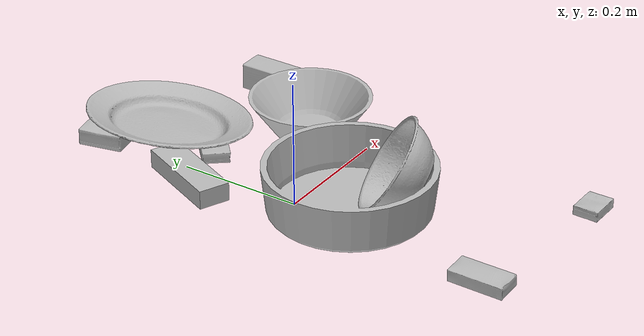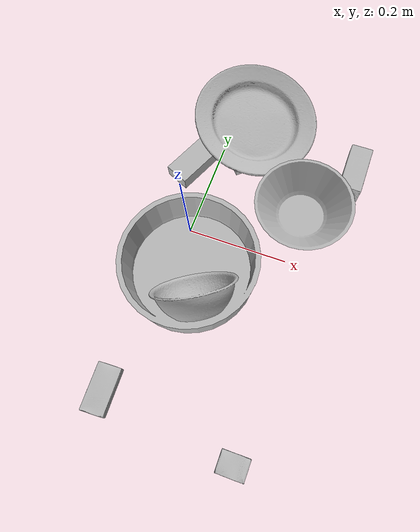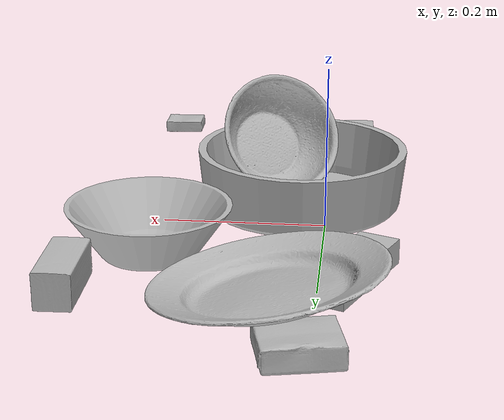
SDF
<sdf version="1.4">
  <world name="default">
    <light name="light1" type="point">
      <pose>0 0 1 0 0 0</pose>
      <diffuse>3 3 3 1</diffuse>
      <specular>3 3 3 1</specular>
    </light>
    <light name="light2" type="point">
      <pose>0 0.5 2 0 0 0</pose>
      <diffuse>1 1 1 1</diffuse>
      <specular>1 1 1 1</specular>
    </light>
    <light name="light3" type="point">
      <pose>0 0.5 2 0 0 0</pose>
      <diffuse>3 3 3 1</diffuse>
      <specular>3 3 3 1</specular>
    </light>
    <scene>
      <ambient>0.7 0.7 0.7</ambient>
    </scene>
    <model name="box1">
      <link name="link_box1">
        <collision name="default">
          <geometry>
            <mesh>
              <uri>model://jenga/collision_meshes/collision.obj</uri>
              <scale>1.0 1.0 1.0</scale>
            </mesh>
          </geometry>
          <surface>
            <friction>
              <ode>
                <mu>0.5</mu>
                <mu2>0.5</mu2>
              </ode>
            </friction>
          <contact>
        <ode>
            <max_vel>0</max_vel>
            <min_depth>0.0001</min_depth>
            <kp>1e8</kp>
        </ode>
    </contact></surface>
        </collision>
        <visual name="default">
          <geometry>
            <mesh>
              <uri>model://jenga/visual_meshes/visual.dae</uri>
              <scale>1.0 1.0 1.0</scale>
            </mesh>
          </geometry>
        </visual>
        <inertial>
          <mass>0.21843092143535614</mass>
          <pose>-2.502855807051674e-07 -0.00010250011109746993 -4.092339804628864e-05 0.0 -7.342154049184251e-07 0.0</pose>
          <inertia>
            <ixx>6.0445138e-05</ixx>
            <iyy>0.0004095746</iyy>
            <izz>0.00043725572</izz>
            <ixy>0</ixy>
            <ixz>0</ixz>
            <iyz>0</iyz>
          </inertia>
        </inertial>
      </link>
      <pose>-0.037145424634218216 0.16622358560562134 0.01500006951391697 -2.909081627653035e-06 1.246560093666286e-07 -1.9793682817948453</pose>
    </model>
    <model name="box11">
      <link name="link_box11">
        <collision name="default">
          <geometry>
            <mesh>
              <uri>model://pudding_box/collision_meshes/collision.obj</uri>
              <scale>0.5 0.5 0.5</scale>
            </mesh>
          </geometry>
          <surface>
            <friction>
              <ode>
                <mu>0.5</mu>
                <mu2>0.5</mu2>
              </ode>
            </friction>
          <contact>
        <ode>
            <max_vel>0</max_vel>
            <min_depth>0.0001</min_depth>
            <kp>1e8</kp>
        </ode>
    </contact></surface>
        </collision>
        <visual name="default">
          <geometry>
            <mesh>
              <uri>model://pudding_box/visual_meshes/visual.dae</uri>
              <scale>0.5 0.5 0.5</scale>
            </mesh>
          </geometry>
        </visual>
        <inertial>
          <mass>0.04130476340651512</mass>
          <pose>0.00024474109522998333 0.00040339428232982755 -0.0002594413817860186 0.005213101341234124 -0.006603795469139562 0.020079830758209564</pose>
          <inertia>
            <ixx>1.1673226e-05</ixx>
            <iyy>7.85383e-06</iyy>
            <izz>1.723857e-05</izz>
            <ixy>0</ixy>
            <ixz>0</ixz>
            <iyz>0</iyz>
          </inertia>
        </inertial>
      </link>
      <pose>0.05112246051430702 0.18457116186618805 0.009862851351499557 0.022418805809441587 -0.011360135169760133 2.3065350059812406</pose>
    </model>
    <model name="box2">
      <link name="link_box2">
        <collision name="default">
          <geometry>
            <mesh>
              <uri>model://gelatin_box/collision_meshes/collision.obj</uri>
              <scale>1.0 1.0 1.0</scale>
            </mesh>
          </geometry>
          <surface>
            <friction>
              <ode>
                <mu>0.5</mu>
                <mu2>0.5</mu2>
              </ode>
            </friction>
          <contact>
        <ode>
            <max_vel>0</max_vel>
            <min_depth>0.0001</min_depth>
            <kp>1e8</kp>
        </ode>
    </contact></surface>
        </collision>
        <visual name="default">
          <geometry>
            <mesh>
              <uri>model://gelatin_box/visual_meshes/visual.dae</uri>
              <scale>1.0 1.0 1.0</scale>
            </mesh>
          </geometry>
        </visual>
        <inertial>
          <mass>0.24153950810432434</mass>
          <pose>0.0004319618456065655 0.00011156871914863586 -0.0003640321083366871 -0.001050371984258798 -0.004755819621622892 0.016440559472145032</pose>
          <inertia>
            <ixx>0.00017050719</ixx>
            <iyy>0.00012179239</iyy>
            <izz>0.0002595499</izz>
            <ixy>0</ixy>
            <ixz>0</ixz>
            <iyz>0</iyz>
          </inertia>
        </inertial>
      </link>
      <pose>0.010921898297965527 0.35529088973999023 0.015168292447924614 0.005599006113062722 -0.007306503703211404 1.7794436261316502</pose>
    </model>
    <model name="box21">
      <link name="link_box21">
        <collision name="default">
          <geometry>
            <mesh>
              <uri>model://cracker_box/collision_meshes/collision.obj</uri>
              <scale>0.25 0.25 0.25</scale>
            </mesh>
          </geometry>
          <surface>
            <friction>
              <ode>
                <mu>0.5</mu>
                <mu2>0.5</mu2>
              </ode>
            </friction>
          <contact>
        <ode>
            <max_vel>0</max_vel>
            <min_depth>0.0001</min_depth>
            <kp>1e8</kp>
        </ode>
    </contact></surface>
        </collision>
        <visual name="default">
          <geometry>
            <mesh>
              <uri>model://cracker_box/visual_meshes/visual.dae</uri>
              <scale>0.25 0.25 0.25</scale>
            </mesh>
          </geometry>
        </visual>
        <inertial>
          <mass>0.04855586588382721</mass>
          <pose>0.00023660322767682374 6.358561222441494e-05 -0.00042573834070935845 -0.00031620783521113603 -0.01110649053142329 0.0025467954689779603</pose>
          <inertia>
            <ixx>7.719027e-06</ixx>
            <iyy>1.2745631e-05</iyy>
            <izz>1.8189185e-05</izz>
            <ixy>0</ixy>
            <ixz>0</ixz>
            <iyz>0</iyz>
          </inertia>
        </inertial>
      </link>
      <pose>0.22739937901496887 -0.3795267641544342 0.009120449423789978 -0.011787988882537542 -0.007367193378553132 -3.1414634992311194</pose>
    </model>
    <model name="box3">
      <link name="link_box3">
        <collision name="default">
          <geometry>
            <mesh>
              <uri>model://wood_block/collision_meshes/collision.obj</uri>
              <scale>0.5 0.5 0.5</scale>
            </mesh>
          </geometry>
          <surface>
            <friction>
              <ode>
                <mu>0.5</mu>
                <mu2>0.5</mu2>
              </ode>
            </friction>
          <contact>
        <ode>
            <max_vel>0</max_vel>
            <min_depth>0.0001</min_depth>
            <kp>1e8</kp>
        </ode>
    </contact></surface>
        </collision>
        <visual name="default">
          <geometry>
            <mesh>
              <uri>model://wood_block/visual_meshes/visual.dae</uri>
              <scale>0.5 0.5 0.5</scale>
            </mesh>
          </geometry>
        </visual>
        <inertial>
          <mass>0.17342756688594818</mass>
          <pose>-2.906657982748584e-06 -0.000285404734313488 0.00013204291462898254 -0.052208426481931185 -0.005192696107352816 -0.006861379630616638</pose>
          <inertia>
            <ixx>5.8018082e-05</ixx>
            <iyy>0.00018327912</iyy>
            <izz>0.00018259356</izz>
            <ixy>0</ixy>
            <ixz>0</ixz>
            <iyz>0</iyz>
          </inertia>
        </inertial>
      </link>
      <pose>0.27786925435066223 0.22642719745635986 0.022629253566265106 -0.005208556288602668 0.00571874518133005 -1.5685555644038864</pose>
    </model>
    <model name="box31">
      <link name="link_box31">
        <collision name="default">
          <geometry>
            <mesh>
              <uri>model://sugar_box/collision_meshes/collision.obj</uri>
              <scale>0.5 0.5 0.5</scale>
            </mesh>
          </geometry>
          <surface>
            <friction>
              <ode>
                <mu>0.5</mu>
                <mu2>0.5</mu2>
              </ode>
            </friction>
          <contact>
        <ode>
            <max_vel>0</max_vel>
            <min_depth>0.0001</min_depth>
            <kp>1e8</kp>
        </ode>
    </contact></surface>
        </collision>
        <visual name="default">
          <geometry>
            <mesh>
              <uri>model://sugar_box/visual_meshes/visual.dae</uri>
              <scale>0.5 0.5 0.5</scale>
            </mesh>
          </geometry>
        </visual>
        <inertial>
          <mass>0.102778859436512</mass>
          <pose>0.0005171863595023751 1.924554817378521e-05 -0.00018182402709499002 -0.00040462592244169 0.0010506634051582892 0.0026153783234817013</pose>
          <inertia>
            <ixx>2.1408765e-05</ixx>
            <iyy>6.919753e-05</iyy>
            <izz>8.2837694e-05</izz>
            <ixy>0</ixy>
            <ixz>0</ixz>
            <iyz>0</iyz>
          </inertia>
        </inertial>
      </link>
      <pose>-0.033610086888074875 -0.34032806754112244 0.011399312876164913 0.0007751508847717307 -0.023432526101395432 1.5967563426771865</pose>
    </model>
    <model name="plate1">
      <link name="link_plate1">
        <collision name="default">
          <geometry>
            <mesh>
              <uri>model://pan_tefal/collision_meshes/collision.obj</uri>
              <scale>1.0 1.0 1.0</scale>
            </mesh>
          </geometry>
          <surface>
            <friction>
              <ode>
                <mu>0.5</mu>
                <mu2>0.5</mu2>
              </ode>
            </friction>
          <contact>
        <ode>
            <max_vel>0</max_vel>
            <min_depth>0.0001</min_depth>
            <kp>1e8</kp>
        </ode>
    </contact></surface>
        </collision>
        <visual name="default">
          <geometry>
            <mesh>
              <uri>model://pan_tefal/visual_meshes/visual.dae</uri>
              <scale>1.0 1.0 1.0</scale>
            </mesh>
          </geometry>
        </visual>
        <inertial>
          <mass>1.4199398756027222</mass>
          <pose>-0.00018002341676037759 3.278919029980898e-05 -0.00851493515074253 0.0008190238651519852 -0.0003301374854212985 -0.3318555266382279</pose>
          <inertia>
            <ixx>0.009801778</ixx>
            <iyy>0.009864969</iyy>
            <izz>0.01804318</izz>
            <ixy>0</ixy>
            <ixz>0</ixz>
            <iyz>0</iyz>
          </inertia>
        </inertial>
      </link>
      <pose>0.03369889780879021 -0.07686807960271835 0.03805001452565193 1.0478941774076334e-08 -2.1553353345879768e-08 1.0083044398091108</pose>
    </model>
    <model name="bowl1">
      <link name="link_bowl1">
        <collision name="default">
          <geometry>
            <mesh>
              <uri>model://bowl/collision_meshes/collision.obj</uri>
              <scale>1.0 1.0 1.0</scale>
            </mesh>
          </geometry>
          <surface>
            <friction>
              <ode>
                <mu>0.5</mu>
                <mu2>0.5</mu2>
              </ode>
            </friction>
          <contact>
        <ode>
            <max_vel>0</max_vel>
            <min_depth>0.0001</min_depth>
            <kp>1e8</kp>
        </ode>
    </contact></surface>
        </collision>
        <visual name="default">
          <geometry>
            <mesh>
              <uri>model://bowl/visual_meshes/visual.dae</uri>
              <scale>1.0 1.0 1.0</scale>
            </mesh>
          </geometry>
        </visual>
        <inertial>
          <mass>0.10393582284450531</mass>
          <pose>0.00020445296831894666 -0.001030207728035748 -0.0008042644476518035 -0.01576405922653839 0.014546845721322095 0.7140430703653545</pose>
          <inertia>
            <ixx>0.00023874876</ixx>
            <iyy>0.00023341418</iyy>
            <izz>0.00040165734</izz>
            <ixy>0</ixy>
            <ixz>0</ixz>
            <iyz>0</iyz>
          </inertia>
        </inertial>
      </link>
      <pose>0.07338503003120422 -0.14184527099132538 0.06536711752414703 -1.0094210737286635 0.049527708546304665 0.5678068334451275</pose>
    </model>
    <model name="plate2">
      <link name="link_plate2">
        <collision name="default">
          <geometry>
            <mesh>
              <uri>model://plate/collision_meshes/collision.obj</uri>
              <scale>1.0 1.0 1.0</scale>
            </mesh>
          </geometry>
          <surface>
            <friction>
              <ode>
                <mu>0.5</mu>
                <mu2>0.5</mu2>
              </ode>
            </friction>
          <contact>
        <ode>
            <max_vel>0</max_vel>
            <min_depth>0.0001</min_depth>
            <kp>1e8</kp>
        </ode>
    </contact></surface>
        </collision>
        <visual name="default">
          <geometry>
            <mesh>
              <uri>model://plate/visual_meshes/visual.dae</uri>
              <scale>1.0 1.0 1.0</scale>
            </mesh>
          </geometry>
        </visual>
        <inertial>
          <mass>0.11643410474061966</mass>
          <pose>-0.0006044629844836891 0.000278257648460567 -0.001056199660524726 0.0022187586917557377 -0.0032254970862864826 0.45261837235677477</pose>
          <inertia>
            <ixx>0.00054468104</ixx>
            <iyy>0.0005394714</iyy>
            <izz>0.0010653147</izz>
            <ixy>0</ixy>
            <ixz>0</ixz>
            <iyz>0</iyz>
          </inertia>
        </inertial>
      </link>
      <pose>0.047271568328142166 0.268461674451828 0.03951285034418106 0.16860510212175533 0.024463535323747093 1.140622321846915</pose>
    </model>
    <model name="bowl2">
      <link name="link_bowl2">
        <collision name="default">
          <geometry>
            <mesh>
              <uri>model://bowl_a/collision_meshes/collision.obj</uri>
              <scale>1.0 1.0 1.0</scale>
            </mesh>
          </geometry>
          <surface>
            <friction>
              <ode>
                <mu>0.5</mu>
                <mu2>0.5</mu2>
              </ode>
            </friction>
          <contact>
        <ode>
            <max_vel>0</max_vel>
            <min_depth>0.0001</min_depth>
            <kp>1e8</kp>
        </ode>
    </contact></surface>
        </collision>
        <visual name="default">
          <geometry>
            <mesh>
              <uri>model://bowl_a/visual_meshes/visual.dae</uri>
              <scale>1.0 1.0 1.0</scale>
            </mesh>
          </geometry>
        </visual>
        <inertial>
          <mass>0.4875580668449402</mass>
          <pose>0.00027867365861311555 4.73092841275502e-05 -0.0013765289913862944 -0.0009805446644095745 -0.0010938154105800495 -0.1912289991244328</pose>
          <inertia>
            <ixx>0.0013881001</ixx>
            <iyy>0.0013966226</iyy>
            <izz>0.0024687892</izz>
            <ixy>0</ixy>
            <ixz>0</ixz>
            <iyz>0</iyz>
          </inertia>
        </inertial>
      </link>
      <pose>0.20153219997882843 0.10684966295957565 0.030383002012968063 -1.3739010183634618e-08 -3.6696990327186162e-09 2.398093603730118</pose>
    </model>
  <physics type="ode">
      <max_contacts>50</max_contacts>
      <ode>
        <solver>
          <type>quick</type>
          <iters>75</iters>
        </solver>
        <constraints>
          <contact_max_correcting_vel>0</contact_max_correcting_vel>
          <contact_surface_layer>0</contact_surface_layer>
        </constraints>
      </ode>
    </physics></world>
</sdf>
